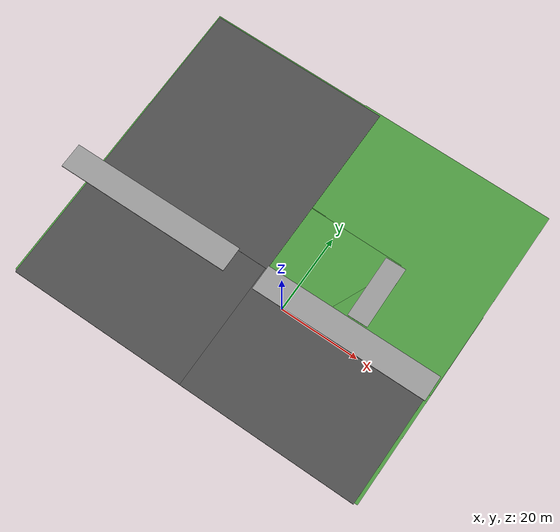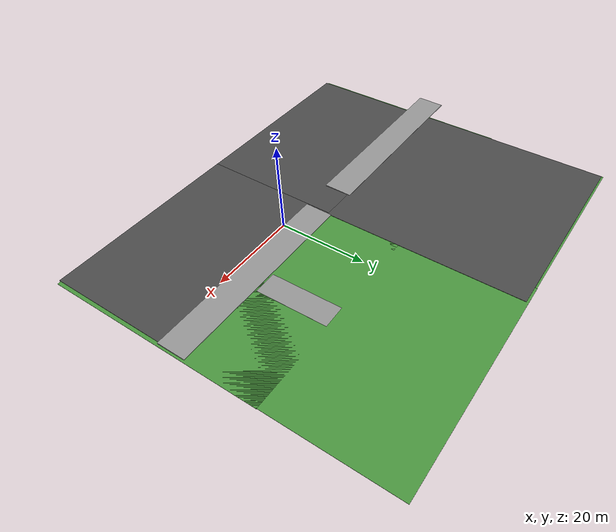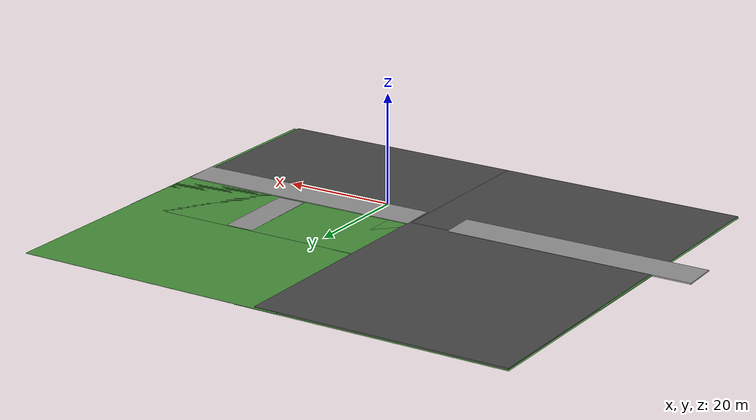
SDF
<sdf version="1.7">
 <world name="default">
  <light name="sun" type="directional">
   <diffuse>0.8 0.8 0.8 1</diffuse>
   <specular>0.2 0.2 0.2 1</specular>
   <attenuation>
    <range>1000</range>
    <constant>0.9</constant>
    <linear>0.01</linear>
    <quadratic>0.001</quadratic>
   </attenuation>
   <direction>-0.5 0.1 -0.9</direction>
   <spot><inner_angle>0</inner_angle><outer_angle>0</outer_angle><falloff>0</falloff></spot>
  </light>
  <scene>
   <sky><clouds><speed>50</speed></clouds></sky>
   <ambient>0 0 0 1</ambient>
   <shadows>0</shadows>
   <background>0.7 0.7 0.7 1</background>
  </scene>
  <gravity>0 0 -9.8</gravity>
  <magnetic_field>6e-06 2.3e-05 -4.2e-05</magnetic_field>
  <atmosphere type="adiabatic"/>
  <physics type="ode">
   <max_step_size>0.001</max_step_size>
   <real_time_factor>1</real_time_factor>
   <real_time_update_rate>1000</real_time_update_rate>
  </physics>
  <spherical_coordinates>
   <surface_model>EARTH_WGS84</surface_model>
   <latitude_deg>0</latitude_deg>
   <longitude_deg>0</longitude_deg>
   <elevation>0</elevation>
   <heading_deg>0</heading_deg>
  </spherical_coordinates>
  <model name="asphalt_plane">
   <static>1</static>
   <link name="link">
    <collision name="collision"><geometry><box><size>0 0 0.1</size></box></geometry></collision>
    <visual name="visual">
     <cast_shadows>0</cast_shadows>
     <geometry><box><size>0 0 0.1</size></box></geometry>
     <material>
      <script>
       <uri>model://asphalt_plane/materials/scripts</uri>
       <uri>model://asphalt_plane/materials/textures</uri>
       <name>vrc/asphalt</name>
      </script>
     </material>
    </visual>
   </link>
   <pose>-0.946504 0.317603 0 0 -0 0</pose>
  </model>
  <model name="grass_plane">
   <static>1</static>
   <link name="link">
    <collision name="collision">
     <geometry><plane><normal>0 0 1</normal><size>500 500</size></plane></geometry>
     <surface><friction><ode><mu>0.5</mu><mu2>0.5</mu2></ode></friction></surface>
    </collision>
    <visual name="visual_0">
     <cast_shadows>0</cast_shadows>
     <geometry><plane><normal>0 0 1</normal><size>50 50</size></plane></geometry>
     <material>
      <script>
       <uri>model://grass_plane/materials/scripts</uri>
       <uri>model://grass_plane/materials/textures</uri>
       <name>vrc/grass</name>
      </script>
     </material>
    </visual>
   </link>
   <pose>-29.3259 27.1367 0 0 -0 0</pose>
  </model>
  <model name="grass_plane_0">
   <static>1</static>
   <link name="link">
    <collision name="collision">
     <geometry><plane><normal>0 0 1</normal><size>500 500</size></plane></geometry>
     <surface><friction><ode><mu>0.5</mu><mu2>0.5</mu2></ode></friction></surface>
    </collision>
    <visual name="visual_0">
     <cast_shadows>0</cast_shadows>
     <geometry><plane><normal>0 0 1</normal><size>50 50</size></plane></geometry>
     <material>
      <script>
       <uri>model://grass_plane/materials/scripts</uri>
       <uri>model://grass_plane/materials/textures</uri>
       <name>vrc/grass</name>
      </script>
     </material>
    </visual>
   </link>
   <pose>12.5582 27.2356 0 0 -0 0</pose>
  </model>
  <model name="grass_plane_1">
   <static>1</static>
   <link name="link">
    <collision name="collision">
     <geometry><plane><normal>0 0 1</normal><size>500 500</size></plane></geometry>
     <surface><friction><ode><mu>0.5</mu><mu2>0.5</mu2></ode></friction></surface>
    </collision>
    <visual name="visual_0">
     <cast_shadows>0</cast_shadows>
     <geometry><plane><normal>0 0 1</normal><size>50 50</size></plane></geometry>
     <material>
      <script>
       <uri>model://grass_plane/materials/scripts</uri>
       <uri>model://grass_plane/materials/textures</uri>
       <name>vrc/grass</name>
      </script>
     </material>
    </visual>
   </link>
   <pose>-29.3292 -1.19036 0 0 -0 0</pose>
  </model>
  <model name="grass_plane_2">
   <static>1</static>
   <link name="link">
    <collision name="collision">
     <geometry><plane><normal>0 0 1</normal><size>500 500</size></plane></geometry>
     <surface><friction><ode><mu>0.5</mu><mu2>0.5</mu2></ode></friction></surface>
    </collision>
    <visual name="visual_0">
     <cast_shadows>0</cast_shadows>
     <geometry><plane><normal>0 0 1</normal><size>50 50</size></plane></geometry>
     <material>
      <script>
       <uri>model://grass_plane/materials/scripts</uri>
       <uri>model://grass_plane/materials/textures</uri>
       <name>vrc/grass</name>
      </script>
     </material>
    </visual>
   </link>
   <pose>12.6466 -1.33167 0 0 -0 0</pose>
  </model>
  <model name="asphalt_plane_0">
   <static>1</static>
   <link name="link">
    <collision name="collision"><geometry><box><size>45.9452 45.9452 0.229726</size></box></geometry></collision>
    <visual name="visual">
     <cast_shadows>0</cast_shadows>
     <geometry><box><size>45.9452 45.9452 0.229726</size></box></geometry>
     <material>
      <script>
       <uri>model://asphalt_plane/materials/scripts</uri>
       <uri>model://asphalt_plane/materials/textures</uri>
       <name>vrc/asphalt</name>
      </script>
     </material>
    </visual>
   </link>
   <pose>-31.0389 28.7757 0 0 -0 0</pose>
  </model>
  <model name="asphalt_plane_1">
   <static>1</static>
   <link name="link">
    <collision name="collision"><geometry><box><size>45.7946 45.7946 0.228973</size></box></geometry></collision>
    <visual name="visual">
     <cast_shadows>0</cast_shadows>
     <geometry><box><size>45.7946 45.7946 0.228973</size></box></geometry>
     <material>
      <script>
       <uri>model://asphalt_plane/materials/scripts</uri>
       <uri>model://asphalt_plane/materials/textures</uri>
       <name>vrc/asphalt</name>
      </script>
     </material>
    </visual>
   </link>
   <pose>-31.0583 -3.79276 -0.009527 0 -0 0</pose>
  </model>
  <model name="asphalt_plane_1_clone">
   <static>1</static>
   <link name="link">
    <collision name="collision"><geometry><box><size>45.3436 33.2107 0.219556</size></box></geometry></collision>
    <visual name="visual">
     <cast_shadows>0</cast_shadows>
     <geometry><box><size>45.3436 33.2107 0.219556</size></box></geometry>
     <material>
      <script>
       <uri>model://asphalt_plane/materials/scripts</uri>
       <uri>model://asphalt_plane/materials/textures</uri>
       <name>vrc/asphalt</name>
      </script>
     </material>
    </visual>
   </link>
   <pose>14.1876 -10.1036 0 0 -0 0</pose>
  </model>
  <model name="unit_box_clone_0">
   <pose>15.0568 15.512 -0.065523 -1e-06 -0.003748 -1.55007</pose>
   <link name="link">
    <inertial>
     <mass>1</mass>
     <inertia>
      <ixx>0.166667</ixx>
      <ixy>0</ixy>
      <ixz>0</ixz>
      <iyy>0.166667</iyy>
      <iyz>0</iyz>
      <izz>0.166667</izz>
     </inertia>
    </inertial>
    <collision name="collision"><geometry><box><size>16.5682 5.18942 0.240219</size></box></geometry></collision>
    <visual name="visual">
     <geometry><box><size>16.5682 5.18942 0.240219</size></box></geometry>
     <material>
      <script><name>Gazebo/Grey</name><uri>file://media/materials/scripts/gazebo.material</uri></script>
     </material>
    </visual>
   </link>
  </model>
  <model name="unit_box_clone">
   <pose>-38.5918 2.92489 0.104266 -0.020059 -0.001339 0.008364</pose>
   <link name="link">
    <inertial>
     <mass>1</mass>
     <inertia>
      <ixx>0.166667</ixx>
      <ixy>0</ixy>
      <ixz>0</ixz>
      <iyy>0.166667</iyy>
      <iyz>0</iyz>
      <izz>0.166667</izz>
     </inertia>
    </inertial>
    <collision name="collision"><geometry><box><size>45.3734 6.50726 0.240219</size></box></geometry></collision>
    <visual name="visual">
     <geometry><box><size>45.3734 6.50726 0.240219</size></box></geometry>
     <material>
      <script><name>Gazebo/Grey</name><uri>file://media/materials/scripts/gazebo.material</uri></script>
     </material>
    </visual>
   </link>
  </model>
  <model name="unit_box_clone_clone">
   <pose>14.4871 3.61055 0.104266 -0.020059 -0.001339 0.008364</pose>
   <link name="link">
    <inertial>
     <mass>1</mass>
     <inertia>
      <ixx>0.166667</ixx>
      <ixy>0</ixy>
      <ixz>0</ixz>
      <iyy>0.166667</iyy>
      <iyz>0</iyz>
      <izz>0.166667</izz>
     </inertia>
    </inertial>
    <collision name="collision"><geometry><box><size>45.3734 6.50726 0.240219</size></box></geometry></collision>
    <visual name="visual">
     <geometry><box><size>45.3734 6.50726 0.240219</size></box></geometry>
     <material>
      <script><name>Gazebo/Grey</name><uri>file://media/materials/scripts/gazebo.material</uri></script>
     </material>
    </visual>
   </link>
  </model>
 </world>
</sdf>
